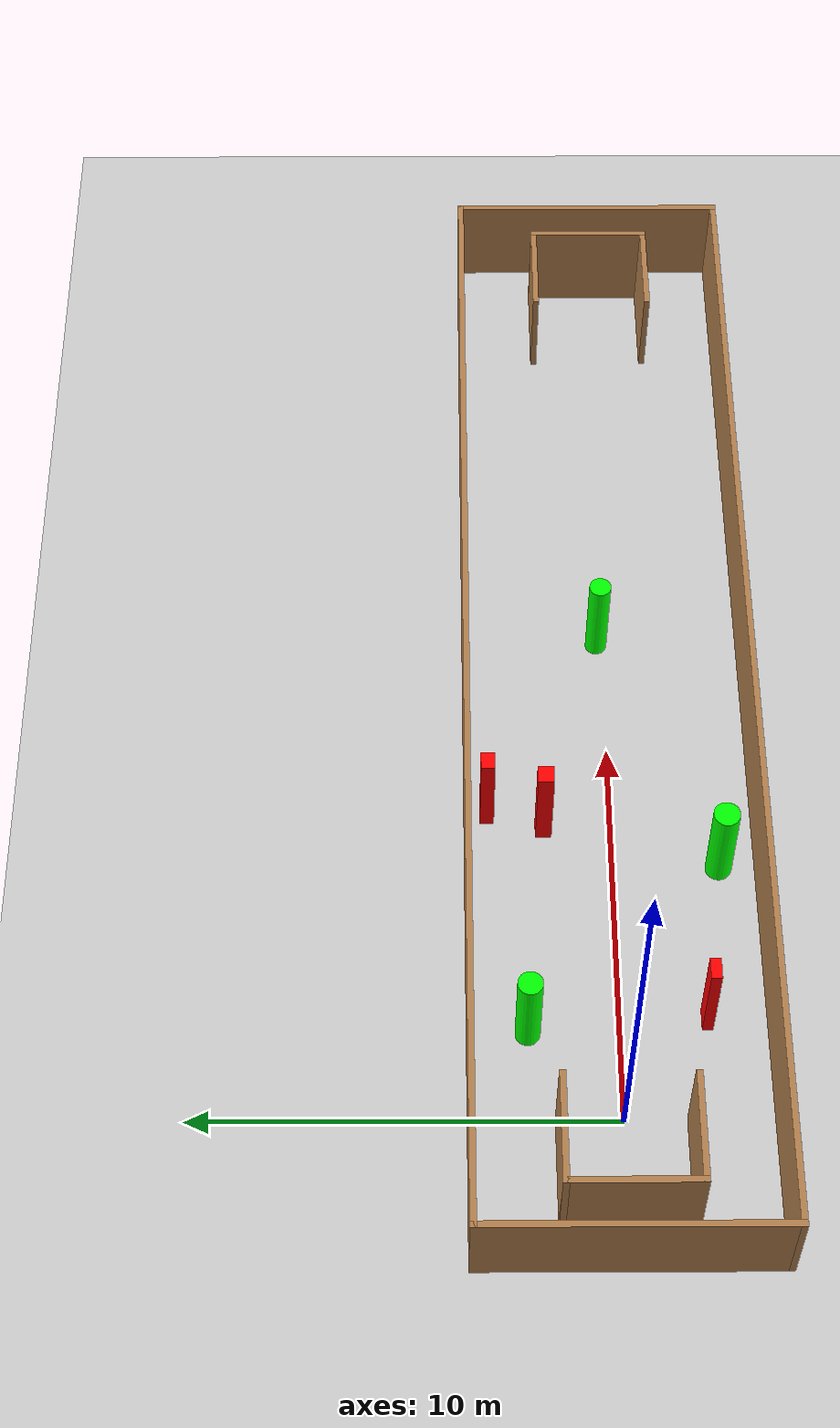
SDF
<sdf version="1.7">
 <world name="default">
  <light name="sun" type="directional">
   <pose>0 0 10 0 -0 0</pose>
   <diffuse>0.8 0.8 0.8 1</diffuse>
   <specular>0.2 0.2 0.2 1</specular>
   <attenuation>
    <range>1000</range>
    <constant>0.9</constant>
    <linear>0.01</linear>
    <quadratic>0.001</quadratic>
   </attenuation>
   <direction>-0.5 0.1 -0.9</direction>
   <spot><inner_angle>0</inner_angle><outer_angle>0</outer_angle><falloff>0</falloff></spot>
  </light>
  <model name="ground_plane">
   <static>1</static>
   <link name="link">
    <collision name="collision">
     <geometry><plane><normal>0 0 1</normal><size>100 100</size></plane></geometry>
     <surface>
      <contact><collide_bitmask>65535</collide_bitmask></contact>
      <friction><ode><mu>100</mu><mu2>50</mu2></ode></friction>
     </surface>
    </collision>
    <visual name="visual">
     <cast_shadows>0</cast_shadows>
     <geometry><plane><normal>0 0 1</normal><size>100 100</size></plane></geometry>
     <material>
      <script><uri>file://media/materials/scripts/gazebo.material</uri><name>Gazebo/Grey</name></script>
     </material>
    </visual>
   </link>
  </model>
  <gravity>0 0 -9.8</gravity>
  <magnetic_field>6e-06 2.3e-05 -4.2e-05</magnetic_field>
  <atmosphere type="adiabatic"/>
  <physics type="ode">
   <max_step_size>0.001</max_step_size>
   <real_time_factor>1</real_time_factor>
   <real_time_update_rate>1000</real_time_update_rate>
  </physics>
  <scene><ambient>0.4 0.4 0.4 1</ambient><background>0.7 0.7 0.7 1</background><shadows>1</shadows></scene>
  <spherical_coordinates>
   <surface_model>EARTH_WGS84</surface_model>
   <latitude_deg>0</latitude_deg>
   <longitude_deg>0</longitude_deg>
   <elevation>0</elevation>
   <heading_deg>0</heading_deg>
  </spherical_coordinates>
  <model name="my_base_walls">
   <link name="Wall_0">
    <collision name="Wall_0_Collision">
     <geometry><box><size>7.15 0.15 2.5</size></box></geometry>
     <pose>0 0 1.25 0 -0 0</pose>
    </collision>
    <visual name="Wall_0_Visual">
     <pose>0 0 1.25 0 -0 0</pose>
     <geometry><box><size>7.15 0.15 2.5</size></box></geometry>
     <material>
      <script><uri>file://media/materials/scripts/gazebo.material</uri><name>Gazebo/Wood</name></script>
      <ambient>1 1 1 1</ambient>
     </material>
     <meta><layer>0</layer></meta>
    </visual>
    <pose>-15 0 0 0 -0 1.5708</pose>
   </link>
   <link name="Wall_10">
    <collision name="Wall_10_Collision">
     <geometry><box><size>2.65 0.15 2.5</size></box></geometry>
     <pose>0 0 1.25 0 -0 0</pose>
    </collision>
    <visual name="Wall_10_Visual">
     <pose>0 0 1.25 0 -0 0</pose>
     <geometry><box><size>2.65 0.15 2.5</size></box></geometry>
     <material>
      <script><uri>file://media/materials/scripts/gazebo.material</uri><name>Gazebo/Wood</name></script>
      <ambient>1 1 1 1</ambient>
     </material>
     <meta><layer>0</layer></meta>
    </visual>
    <pose>-12.75 -1.5 0 0 -0 0</pose>
   </link>
   <link name="Wall_12">
    <collision name="Wall_12_Collision">
     <geometry><box><size>2.65 0.15 2.5</size></box></geometry>
     <pose>0 0 1.25 0 -0 0</pose>
    </collision>
    <visual name="Wall_12_Visual">
     <pose>0 0 1.25 0 -0 0</pose>
     <geometry><box><size>2.65 0.15 2.5</size></box></geometry>
     <material>
      <script><uri>file://media/materials/scripts/gazebo.material</uri><name>Gazebo/Wood</name></script>
      <ambient>1 1 1 1</ambient>
     </material>
     <meta><layer>0</layer></meta>
    </visual>
    <pose>-12.75 1.5 0 0 -0 0</pose>
   </link>
   <link name="Wall_14">
    <collision name="Wall_14_Collision">
     <geometry><box><size>3.15 0.15 2.5</size></box></geometry>
     <pose>0 0 1.25 0 -0 0</pose>
    </collision>
    <visual name="Wall_14_Visual">
     <pose>0 0 1.25 0 -0 0</pose>
     <geometry><box><size>3.15 0.15 2.5</size></box></geometry>
     <material>
      <script><uri>file://media/materials/scripts/gazebo.material</uri><name>Gazebo/Wood</name></script>
      <ambient>1 1 1 1</ambient>
     </material>
     <meta><layer>0</layer></meta>
    </visual>
    <pose>14 0 0 0 -0 -1.5708</pose>
   </link>
   <link name="Wall_15">
    <collision name="Wall_15_Collision">
     <geometry><box><size>2.65 0.15 2.5</size></box></geometry>
     <pose>0 0 1.25 0 -0 0</pose>
    </collision>
    <visual name="Wall_15_Visual">
     <pose>0 0 1.25 0 -0 0</pose>
     <geometry><box><size>2.65 0.15 2.5</size></box></geometry>
     <material>
      <script><uri>file://media/materials/scripts/gazebo.material</uri><name>Gazebo/Wood</name></script>
      <ambient>1 1 1 1</ambient>
     </material>
     <meta><layer>0</layer></meta>
    </visual>
    <pose>12.75 -1.5 0 0 -0 3.14159</pose>
   </link>
   <link name="Wall_17">
    <collision name="Wall_17_Collision">
     <geometry><box><size>2.65 0.15 2.5</size></box></geometry>
     <pose>0 0 1.25 0 -0 0</pose>
    </collision>
    <visual name="Wall_17_Visual">
     <pose>0 0 1.25 0 -0 0</pose>
     <geometry><box><size>2.65 0.15 2.5</size></box></geometry>
     <material>
      <script><uri>file://media/materials/scripts/gazebo.material</uri><name>Gazebo/Wood</name></script>
      <ambient>1 1 1 1</ambient>
     </material>
     <meta><layer>0</layer></meta>
    </visual>
    <pose>12.75 1.5 0 0 -0 3.14159</pose>
   </link>
   <link name="Wall_2">
    <collision name="Wall_2_Collision">
     <geometry><box><size>30.15 0.15 2.5</size></box></geometry>
     <pose>0 0 1.25 0 -0 0</pose>
    </collision>
    <visual name="Wall_2_Visual">
     <pose>0 0 1.25 0 -0 0</pose>
     <geometry><box><size>30.15 0.15 2.5</size></box></geometry>
     <material>
      <script><uri>file://media/materials/scripts/gazebo.material</uri><name>Gazebo/Wood</name></script>
      <ambient>1 1 1 1</ambient>
     </material>
     <meta><layer>0</layer></meta>
    </visual>
    <pose>-0 -3.5 0 0 -0 0</pose>
   </link>
   <link name="Wall_4">
    <collision name="Wall_4_Collision">
     <geometry><box><size>30.15 0.15 2.5</size></box></geometry>
     <pose>0 0 1.25 0 -0 0</pose>
    </collision>
    <visual name="Wall_4_Visual">
     <pose>0 0 1.25 0 -0 0</pose>
     <geometry><box><size>30.15 0.15 2.5</size></box></geometry>
     <material>
      <script><uri>file://media/materials/scripts/gazebo.material</uri><name>Gazebo/Wood</name></script>
      <ambient>1 1 1 1</ambient>
     </material>
     <meta><layer>0</layer></meta>
    </visual>
    <pose>-0 3.5 0 0 -0 0</pose>
   </link>
   <link name="Wall_6">
    <collision name="Wall_6_Collision">
     <geometry><box><size>7.15 0.15 2.5</size></box></geometry>
     <pose>0 0 1.25 0 -0 0</pose>
    </collision>
    <visual name="Wall_6_Visual">
     <pose>0 0 1.25 0 -0 0</pose>
     <geometry><box><size>7.15 0.15 2.5</size></box></geometry>
     <material>
      <script><uri>file://media/materials/scripts/gazebo.material</uri><name>Gazebo/Wood</name></script>
      <ambient>1 1 1 1</ambient>
     </material>
     <meta><layer>0</layer></meta>
    </visual>
    <pose>15 0 0 0 -0 -1.5708</pose>
   </link>
   <link name="Wall_9">
    <collision name="Wall_9_Collision">
     <geometry><box><size>3.15 0.15 2.5</size></box></geometry>
     <pose>0 0 1.25 0 -0 0</pose>
    </collision>
    <visual name="Wall_9_Visual">
     <pose>0 0 1.25 0 -0 0</pose>
     <geometry><box><size>3.15 0.15 2.5</size></box></geometry>
     <material>
      <script><uri>file://media/materials/scripts/gazebo.material</uri><name>Gazebo/Wood</name></script>
      <ambient>1 1 1 1</ambient>
     </material>
     <meta><layer>0</layer></meta>
    </visual>
    <pose>-14 0 0 0 -0 -1.5708</pose>
   </link>
   <static>1</static>
   <pose>11.5 0 0 0 -0 0</pose>
  </model>
  <model name="cylinder1">
   <static>1</static>
   <link name="link">
    <inertial>
     <mass>1</mass>
     <inertia><ixx>0.5</ixx><ixy>0</ixy><ixz>0</ixz><iyy>0.5</iyy><iyz>0</iyz><izz>1</izz></inertia>
    </inertial>
    <collision name="collision">
     <geometry><cylinder><radius>0.29527670054169525</radius><length>2.5</length></cylinder></geometry>
    </collision>
    <visual name="visual">
     <geometry><cylinder><radius>0.29527670054169525</radius><length>2.5</length></cylinder></geometry>
     <material>
      <ambient>0 1 0 1</ambient>
      <diffuse>0 1 0 1</diffuse>
      <specular>0.1 0.1 0.1 1</specular>
      <emissive>0 0 0 0</emissive>
     </material>
    </visual>
   </link>
   <pose>2.208143793077223 2.1476997565447604 1.25 0 0 0</pose>
  </model>
  <model name="cylinder2">
   <static>1</static>
   <link name="link">
    <inertial>
     <mass>1</mass>
     <inertia><ixx>0.5</ixx><ixy>0</ixy><ixz>0</ixz><iyy>0.5</iyy><iyz>0</iyz><izz>1</izz></inertia>
    </inertial>
    <collision name="collision">
     <geometry><cylinder><radius>0.3189986649983874</radius><length>2.5</length></cylinder></geometry>
    </collision>
    <visual name="visual">
     <geometry><cylinder><radius>0.3189986649983874</radius><length>2.5</length></cylinder></geometry>
     <material>
      <ambient>0 1 0 1</ambient>
      <diffuse>0 1 0 1</diffuse>
      <specular>0.1 0.1 0.1 1</specular>
      <emissive>0 0 0 0</emissive>
     </material>
    </visual>
   </link>
   <pose>6.632851097596305 -2.557622218738033 1.25 0 0 0</pose>
  </model>
  <model name="cylinder3">
   <static>1</static>
   <link name="link">
    <inertial>
     <mass>1</mass>
     <inertia><ixx>0.5</ixx><ixy>0</ixy><ixz>0</ixz><iyy>0.5</iyy><iyz>0</iyz><izz>1</izz></inertia>
    </inertial>
    <collision name="collision">
     <geometry><cylinder><radius>0.26889950008613417</radius><length>2.5</length></cylinder></geometry>
    </collision>
    <visual name="visual">
     <geometry><cylinder><radius>0.26889950008613417</radius><length>2.5</length></cylinder></geometry>
     <material>
      <ambient>0 1 0 1</ambient>
      <diffuse>0 1 0 1</diffuse>
      <specular>0.1 0.1 0.1 1</specular>
      <emissive>0 0 0 0</emissive>
     </material>
    </visual>
   </link>
   <pose>13.278176345708077 0.1446936564093546 1.25 0 0 0</pose>
  </model>
  <model name="box1">
   <static>1</static>
   <link name="link">
    <inertial>
     <mass>1</mass>
     <inertia><ixx>0.083</ixx><ixy>0</ixy><ixz>0</ixz><iyy>0.083</iyy><iyz>0</iyz><izz>0.083</izz></inertia>
    </inertial>
    <collision name="collision">
     <geometry><box><size>0.4431485762131197 0.38925773504497646 2.5</size></box></geometry>
    </collision>
    <visual name="visual">
     <geometry><box><size>0.4431485762131197 0.38925773504497646 2.5</size></box></geometry>
     <material>
      <ambient>1 0 0 1</ambient>
      <diffuse>1 0 0 1</diffuse>
      <specular>0.1 0.1 0.1 1</specular>
      <emissive>0 0 0 0</emissive>
     </material>
    </visual>
    <sensor name="my_contact" type="contact">
     <contact><collision>box_collision</collision><topic>__default_topic__</topic></contact>
    </sensor>
   </link>
   <pose>7.759179250226426 1.6421546719706583 1.25 0 0 0</pose>
  </model>
  <model name="box2">
   <static>1</static>
   <link name="link">
    <inertial>
     <mass>1</mass>
     <inertia><ixx>0.083</ixx><ixy>0</ixy><ixz>0</ixz><iyy>0.083</iyy><iyz>0</iyz><izz>0.083</izz></inertia>
    </inertial>
    <collision name="collision">
     <geometry><box><size>0.4347762671170274 0.33894944198265214 2.5</size></box></geometry>
    </collision>
    <visual name="visual">
     <geometry><box><size>0.4347762671170274 0.33894944198265214 2.5</size></box></geometry>
     <material>
      <ambient>1 0 0 1</ambient>
      <diffuse>1 0 0 1</diffuse>
      <specular>0.1 0.1 0.1 1</specular>
      <emissive>0 0 0 0</emissive>
     </material>
    </visual>
    <sensor name="my_contact" type="contact">
     <contact><collision>box_collision</collision><topic>__default_topic__</topic></contact>
    </sensor>
   </link>
   <pose>8.157589082738992 3.0117824195838256 1.25 0 0 0</pose>
  </model>
  <model name="box3">
   <static>1</static>
   <link name="link">
    <inertial>
     <mass>1</mass>
     <inertia><ixx>0.083</ixx><ixy>0</ixy><ixz>0</ixz><iyy>0.083</iyy><iyz>0</iyz><izz>0.083</izz></inertia>
    </inertial>
    <collision name="collision">
     <geometry><box><size>0.514881020480217 0.2582077086821985 2.5</size></box></geometry>
    </collision>
    <visual name="visual">
     <geometry><box><size>0.514881020480217 0.2582077086821985 2.5</size></box></geometry>
     <material>
      <ambient>1 0 0 1</ambient>
      <diffuse>1 0 0 1</diffuse>
      <specular>0.1 0.1 0.1 1</specular>
      <emissive>0 0 0 0</emissive>
     </material>
    </visual>
    <sensor name="my_contact" type="contact">
     <contact><collision>box_collision</collision><topic>__default_topic__</topic></contact>
    </sensor>
   </link>
   <pose>2.5667295551715927 -2.0307507353636787 1.25 0 0 0</pose>
  </model>
 </world>
</sdf>
